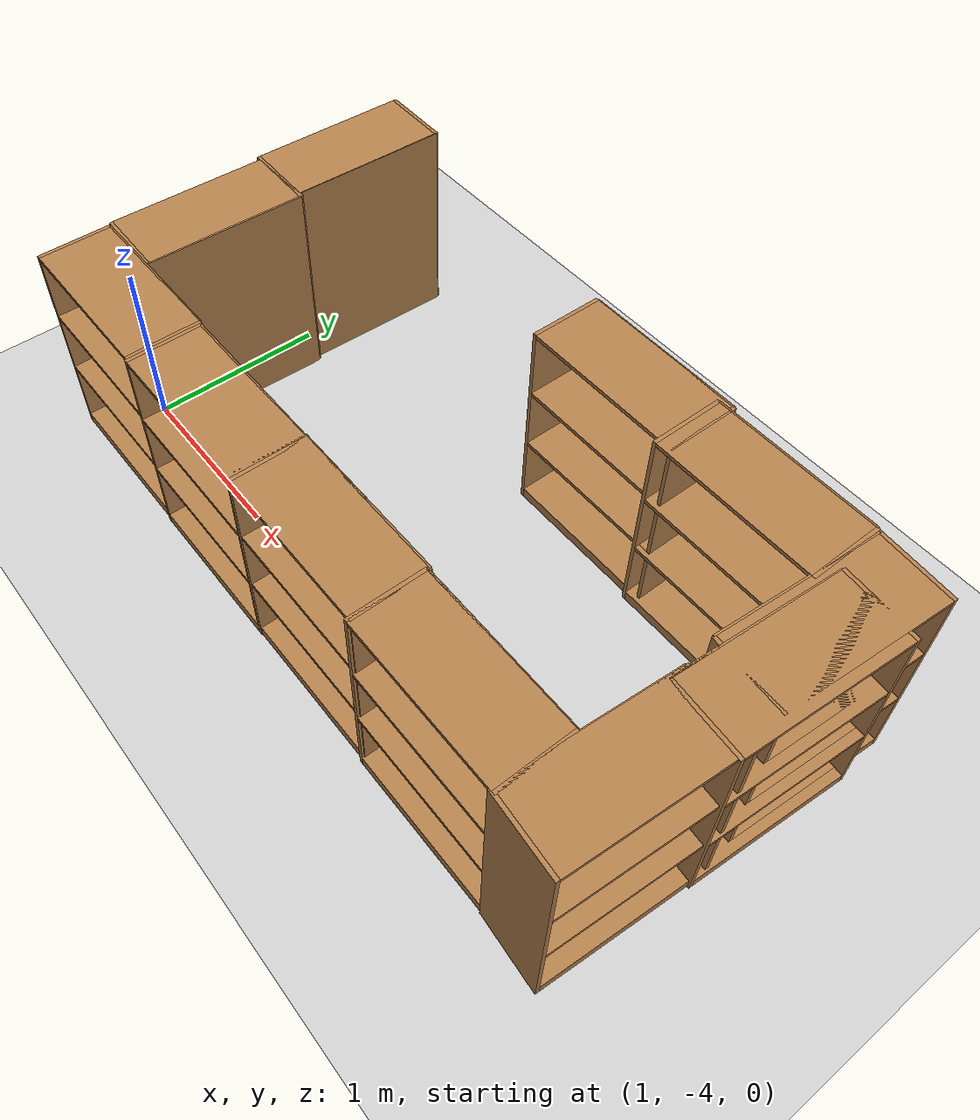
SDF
<sdf version="1.6">
 <world name="default">
  <model name="ground_plane">
   <static>1</static>
   <link name="link">
    <collision name="collision">
     <geometry><plane><normal>0 0 1</normal><size>100 100</size></plane></geometry>
     <surface>
      <contact><collide_bitmask>65535</collide_bitmask></contact>
      <friction><ode><mu>100</mu><mu2>50</mu2></ode></friction>
     </surface>
    </collision>
    <visual name="visual">
     <cast_shadows>0</cast_shadows>
     <geometry><plane><normal>0 0 1</normal><size>100 100</size></plane></geometry>
     <material>
      <script><uri>file://media/materials/scripts/gazebo.material</uri><name>Gazebo/Grey</name></script>
     </material>
    </visual>
   </link>
  </model>
  <model name="bookshelf_clone_1_clone_0_clone_clone_clone">
   <static>1</static>
   <link name="link">
    <inertial><mass>1</mass></inertial>
    <collision name="back">
     <pose>0 0.005 0.6 0 -0 0</pose>
     <geometry><box><size>0.9 0.01 1.2</size></box></geometry>
    </collision>
    <visual name="visual1">
     <pose>0 0.005 0.6 0 -0 0</pose>
     <geometry><box><size>0.9 0.01 1.2</size></box></geometry>
     <material>
      <script><uri>file://media/materials/scripts/gazebo.material</uri><name>Gazebo/Wood</name></script>
     </material>
    </visual>
    <collision name="left_side">
     <pose>0.45 -0.195 0.6 0 -0 0</pose>
     <geometry><box><size>0.02 0.4 1.2</size></box></geometry>
    </collision>
    <visual name="visual2">
     <pose>0.45 -0.195 0.6 0 -0 0</pose>
     <geometry><box><size>0.02 0.4 1.2</size></box></geometry>
     <material>
      <script><uri>file://media/materials/scripts/gazebo.material</uri><name>Gazebo/Wood</name></script>
     </material>
    </visual>
    <collision name="right_side">
     <pose>-0.45 -0.195 0.6 0 -0 0</pose>
     <geometry><box><size>0.02 0.4 1.2</size></box></geometry>
    </collision>
    <visual name="visual3">
     <pose>-0.45 -0.195 0.6 0 -0 0</pose>
     <geometry><box><size>0.02 0.4 1.2</size></box></geometry>
     <material>
      <script><uri>file://media/materials/scripts/gazebo.material</uri><name>Gazebo/Wood</name></script>
     </material>
    </visual>
    <collision name="bottom">
     <pose>0 -0.195 0.03 0 -0 0</pose>
     <geometry><box><size>0.88 0.4 0.06</size></box></geometry>
    </collision>
    <visual name="visual4">
     <pose>0 -0.195 0.03 0 -0 0</pose>
     <geometry><box><size>0.88 0.4 0.06</size></box></geometry>
     <material>
      <script><uri>file://media/materials/scripts/gazebo.material</uri><name>Gazebo/Wood</name></script>
     </material>
    </visual>
    <collision name="top">
     <pose>0 -0.195 1.19 0 -0 0</pose>
     <geometry><box><size>0.88 0.4 0.02</size></box></geometry>
    </collision>
    <visual name="visual5">
     <pose>0 -0.195 1.19 0 -0 0</pose>
     <geometry><box><size>0.88 0.4 0.02</size></box></geometry>
     <material>
      <script><uri>file://media/materials/scripts/gazebo.material</uri><name>Gazebo/Wood</name></script>
     </material>
    </visual>
    <collision name="low_shelf">
     <pose>0 -0.195 0.43 0 -0 0</pose>
     <geometry><box><size>0.88 0.4 0.02</size></box></geometry>
    </collision>
    <visual name="visual6">
     <pose>0 -0.195 0.43 0 -0 0</pose>
     <geometry><box><size>0.88 0.4 0.02</size></box></geometry>
     <material>
      <script><uri>file://media/materials/scripts/gazebo.material</uri><name>Gazebo/Wood</name></script>
     </material>
    </visual>
    <collision name="high_shelf">
     <pose>0 -0.195 0.8 0 -0 0</pose>
     <geometry><box><size>0.88 0.4 0.02</size></box></geometry>
    </collision>
    <visual name="visual7">
     <pose>0 -0.195 0.8 0 -0 0</pose>
     <geometry><box><size>0.88 0.4 0.02</size></box></geometry>
     <material>
      <script><uri>file://media/materials/scripts/gazebo.material</uri><name>Gazebo/Wood</name></script>
     </material>
    </visual>
   </link>
   <pose>1.18486 -2.61264 0 0 0 -1.59248</pose>
  </model>
  <model name="bookshelf_clone_1_clone_0_clone_clone_clone_0">
   <static>1</static>
   <link name="link">
    <inertial><mass>1</mass></inertial>
    <collision name="back">
     <pose>0 0.005 0.6 0 -0 0</pose>
     <geometry><box><size>0.9 0.01 1.2</size></box></geometry>
    </collision>
    <visual name="visual1">
     <pose>0 0.005 0.6 0 -0 0</pose>
     <geometry><box><size>0.9 0.01 1.2</size></box></geometry>
     <material>
      <script><uri>file://media/materials/scripts/gazebo.material</uri><name>Gazebo/Wood</name></script>
     </material>
    </visual>
    <collision name="left_side">
     <pose>0.45 -0.195 0.6 0 -0 0</pose>
     <geometry><box><size>0.02 0.4 1.2</size></box></geometry>
    </collision>
    <visual name="visual2">
     <pose>0.45 -0.195 0.6 0 -0 0</pose>
     <geometry><box><size>0.02 0.4 1.2</size></box></geometry>
     <material>
      <script><uri>file://media/materials/scripts/gazebo.material</uri><name>Gazebo/Wood</name></script>
     </material>
    </visual>
    <collision name="right_side">
     <pose>-0.45 -0.195 0.6 0 -0 0</pose>
     <geometry><box><size>0.02 0.4 1.2</size></box></geometry>
    </collision>
    <visual name="visual3">
     <pose>-0.45 -0.195 0.6 0 -0 0</pose>
     <geometry><box><size>0.02 0.4 1.2</size></box></geometry>
     <material>
      <script><uri>file://media/materials/scripts/gazebo.material</uri><name>Gazebo/Wood</name></script>
     </material>
    </visual>
    <collision name="bottom">
     <pose>0 -0.195 0.03 0 -0 0</pose>
     <geometry><box><size>0.88 0.4 0.06</size></box></geometry>
    </collision>
    <visual name="visual4">
     <pose>0 -0.195 0.03 0 -0 0</pose>
     <geometry><box><size>0.88 0.4 0.06</size></box></geometry>
     <material>
      <script><uri>file://media/materials/scripts/gazebo.material</uri><name>Gazebo/Wood</name></script>
     </material>
    </visual>
    <collision name="top">
     <pose>0 -0.195 1.19 0 -0 0</pose>
     <geometry><box><size>0.88 0.4 0.02</size></box></geometry>
    </collision>
    <visual name="visual5">
     <pose>0 -0.195 1.19 0 -0 0</pose>
     <geometry><box><size>0.88 0.4 0.02</size></box></geometry>
     <material>
      <script><uri>file://media/materials/scripts/gazebo.material</uri><name>Gazebo/Wood</name></script>
     </material>
    </visual>
    <collision name="low_shelf">
     <pose>0 -0.195 0.43 0 -0 0</pose>
     <geometry><box><size>0.88 0.4 0.02</size></box></geometry>
    </collision>
    <visual name="visual6">
     <pose>0 -0.195 0.43 0 -0 0</pose>
     <geometry><box><size>0.88 0.4 0.02</size></box></geometry>
     <material>
      <script><uri>file://media/materials/scripts/gazebo.material</uri><name>Gazebo/Wood</name></script>
     </material>
    </visual>
    <collision name="high_shelf">
     <pose>0 -0.195 0.8 0 -0 0</pose>
     <geometry><box><size>0.88 0.4 0.02</size></box></geometry>
    </collision>
    <visual name="visual7">
     <pose>0 -0.195 0.8 0 -0 0</pose>
     <geometry><box><size>0.88 0.4 0.02</size></box></geometry>
     <material>
      <script><uri>file://media/materials/scripts/gazebo.material</uri><name>Gazebo/Wood</name></script>
     </material>
    </visual>
   </link>
   <pose>1.1935 -3.51086 0 0 0 -1.59248</pose>
  </model>
  <model name="bookshelf_clone_3">
   <static>1</static>
   <link name="link">
    <inertial><mass>1</mass></inertial>
    <collision name="back">
     <pose>0 0.005 0.6 0 -0 0</pose>
     <geometry><box><size>0.9 0.01 1.2</size></box></geometry>
    </collision>
    <visual name="visual1">
     <pose>0 0.005 0.6 0 -0 0</pose>
     <geometry><box><size>0.9 0.01 1.2</size></box></geometry>
     <material>
      <script><uri>file://media/materials/scripts/gazebo.material</uri><name>Gazebo/Wood</name></script>
     </material>
    </visual>
    <collision name="left_side">
     <pose>0.45 -0.195 0.6 0 -0 0</pose>
     <geometry><box><size>0.02 0.4 1.2</size></box></geometry>
    </collision>
    <visual name="visual2">
     <pose>0.45 -0.195 0.6 0 -0 0</pose>
     <geometry><box><size>0.02 0.4 1.2</size></box></geometry>
     <material>
      <script><uri>file://media/materials/scripts/gazebo.material</uri><name>Gazebo/Wood</name></script>
     </material>
    </visual>
    <collision name="right_side">
     <pose>-0.45 -0.195 0.6 0 -0 0</pose>
     <geometry><box><size>0.02 0.4 1.2</size></box></geometry>
    </collision>
    <visual name="visual3">
     <pose>-0.45 -0.195 0.6 0 -0 0</pose>
     <geometry><box><size>0.02 0.4 1.2</size></box></geometry>
     <material>
      <script><uri>file://media/materials/scripts/gazebo.material</uri><name>Gazebo/Wood</name></script>
     </material>
    </visual>
    <collision name="bottom">
     <pose>0 -0.195 0.03 0 -0 0</pose>
     <geometry><box><size>0.88 0.4 0.06</size></box></geometry>
    </collision>
    <visual name="visual4">
     <pose>0 -0.195 0.03 0 -0 0</pose>
     <geometry><box><size>0.88 0.4 0.06</size></box></geometry>
     <material>
      <script><uri>file://media/materials/scripts/gazebo.material</uri><name>Gazebo/Wood</name></script>
     </material>
    </visual>
    <collision name="top">
     <pose>0 -0.195 1.19 0 -0 0</pose>
     <geometry><box><size>0.88 0.4 0.02</size></box></geometry>
    </collision>
    <visual name="visual5">
     <pose>0 -0.195 1.19 0 -0 0</pose>
     <geometry><box><size>0.88 0.4 0.02</size></box></geometry>
     <material>
      <script><uri>file://media/materials/scripts/gazebo.material</uri><name>Gazebo/Wood</name></script>
     </material>
    </visual>
    <collision name="low_shelf">
     <pose>0 -0.195 0.43 0 -0 0</pose>
     <geometry><box><size>0.88 0.4 0.02</size></box></geometry>
    </collision>
    <visual name="visual6">
     <pose>0 -0.195 0.43 0 -0 0</pose>
     <geometry><box><size>0.88 0.4 0.02</size></box></geometry>
     <material>
      <script><uri>file://media/materials/scripts/gazebo.material</uri><name>Gazebo/Wood</name></script>
     </material>
    </visual>
    <collision name="high_shelf">
     <pose>0 -0.195 0.8 0 -0 0</pose>
     <geometry><box><size>0.88 0.4 0.02</size></box></geometry>
    </collision>
    <visual name="visual7">
     <pose>0 -0.195 0.8 0 -0 0</pose>
     <geometry><box><size>0.88 0.4 0.02</size></box></geometry>
     <material>
      <script><uri>file://media/materials/scripts/gazebo.material</uri><name>Gazebo/Wood</name></script>
     </material>
    </visual>
   </link>
   <pose>1.26252 -3.97265 0 0 -0 0</pose>
  </model>
  <model name="bookshelf_clone_4">
   <static>1</static>
   <link name="link">
    <inertial><mass>1</mass></inertial>
    <collision name="back">
     <pose>0 0.005 0.6 0 -0 0</pose>
     <geometry><box><size>0.9 0.01 1.2</size></box></geometry>
    </collision>
    <visual name="visual1">
     <pose>0 0.005 0.6 0 -0 0</pose>
     <geometry><box><size>0.9 0.01 1.2</size></box></geometry>
     <material>
      <script><uri>file://media/materials/scripts/gazebo.material</uri><name>Gazebo/Wood</name></script>
     </material>
    </visual>
    <collision name="left_side">
     <pose>0.45 -0.195 0.6 0 -0 0</pose>
     <geometry><box><size>0.02 0.4 1.2</size></box></geometry>
    </collision>
    <visual name="visual2">
     <pose>0.45 -0.195 0.6 0 -0 0</pose>
     <geometry><box><size>0.02 0.4 1.2</size></box></geometry>
     <material>
      <script><uri>file://media/materials/scripts/gazebo.material</uri><name>Gazebo/Wood</name></script>
     </material>
    </visual>
    <collision name="right_side">
     <pose>-0.45 -0.195 0.6 0 -0 0</pose>
     <geometry><box><size>0.02 0.4 1.2</size></box></geometry>
    </collision>
    <visual name="visual3">
     <pose>-0.45 -0.195 0.6 0 -0 0</pose>
     <geometry><box><size>0.02 0.4 1.2</size></box></geometry>
     <material>
      <script><uri>file://media/materials/scripts/gazebo.material</uri><name>Gazebo/Wood</name></script>
     </material>
    </visual>
    <collision name="bottom">
     <pose>0 -0.195 0.03 0 -0 0</pose>
     <geometry><box><size>0.88 0.4 0.06</size></box></geometry>
    </collision>
    <visual name="visual4">
     <pose>0 -0.195 0.03 0 -0 0</pose>
     <geometry><box><size>0.88 0.4 0.06</size></box></geometry>
     <material>
      <script><uri>file://media/materials/scripts/gazebo.material</uri><name>Gazebo/Wood</name></script>
     </material>
    </visual>
    <collision name="top">
     <pose>0 -0.195 1.19 0 -0 0</pose>
     <geometry><box><size>0.88 0.4 0.02</size></box></geometry>
    </collision>
    <visual name="visual5">
     <pose>0 -0.195 1.19 0 -0 0</pose>
     <geometry><box><size>0.88 0.4 0.02</size></box></geometry>
     <material>
      <script><uri>file://media/materials/scripts/gazebo.material</uri><name>Gazebo/Wood</name></script>
     </material>
    </visual>
    <collision name="low_shelf">
     <pose>0 -0.195 0.43 0 -0 0</pose>
     <geometry><box><size>0.88 0.4 0.02</size></box></geometry>
    </collision>
    <visual name="visual6">
     <pose>0 -0.195 0.43 0 -0 0</pose>
     <geometry><box><size>0.88 0.4 0.02</size></box></geometry>
     <material>
      <script><uri>file://media/materials/scripts/gazebo.material</uri><name>Gazebo/Wood</name></script>
     </material>
    </visual>
    <collision name="high_shelf">
     <pose>0 -0.195 0.8 0 -0 0</pose>
     <geometry><box><size>0.88 0.4 0.02</size></box></geometry>
    </collision>
    <visual name="visual7">
     <pose>0 -0.195 0.8 0 -0 0</pose>
     <geometry><box><size>0.88 0.4 0.02</size></box></geometry>
     <material>
      <script><uri>file://media/materials/scripts/gazebo.material</uri><name>Gazebo/Wood</name></script>
     </material>
    </visual>
   </link>
   <pose>2.18043 -3.98119 0 0 -0 0</pose>
  </model>
  <model name="bookshelf_clone_5">
   <static>1</static>
   <link name="link">
    <inertial><mass>1</mass></inertial>
    <collision name="back">
     <pose>0 0.005 0.6 0 -0 0</pose>
     <geometry><box><size>0.9 0.01 1.2</size></box></geometry>
    </collision>
    <visual name="visual1">
     <pose>0 0.005 0.6 0 -0 0</pose>
     <geometry><box><size>0.9 0.01 1.2</size></box></geometry>
     <material>
      <script><uri>file://media/materials/scripts/gazebo.material</uri><name>Gazebo/Wood</name></script>
     </material>
    </visual>
    <collision name="left_side">
     <pose>0.45 -0.195 0.6 0 -0 0</pose>
     <geometry><box><size>0.02 0.4 1.2</size></box></geometry>
    </collision>
    <visual name="visual2">
     <pose>0.45 -0.195 0.6 0 -0 0</pose>
     <geometry><box><size>0.02 0.4 1.2</size></box></geometry>
     <material>
      <script><uri>file://media/materials/scripts/gazebo.material</uri><name>Gazebo/Wood</name></script>
     </material>
    </visual>
    <collision name="right_side">
     <pose>-0.45 -0.195 0.6 0 -0 0</pose>
     <geometry><box><size>0.02 0.4 1.2</size></box></geometry>
    </collision>
    <visual name="visual3">
     <pose>-0.45 -0.195 0.6 0 -0 0</pose>
     <geometry><box><size>0.02 0.4 1.2</size></box></geometry>
     <material>
      <script><uri>file://media/materials/scripts/gazebo.material</uri><name>Gazebo/Wood</name></script>
     </material>
    </visual>
    <collision name="bottom">
     <pose>0 -0.195 0.03 0 -0 0</pose>
     <geometry><box><size>0.88 0.4 0.06</size></box></geometry>
    </collision>
    <visual name="visual4">
     <pose>0 -0.195 0.03 0 -0 0</pose>
     <geometry><box><size>0.88 0.4 0.06</size></box></geometry>
     <material>
      <script><uri>file://media/materials/scripts/gazebo.material</uri><name>Gazebo/Wood</name></script>
     </material>
    </visual>
    <collision name="top">
     <pose>0 -0.195 1.19 0 -0 0</pose>
     <geometry><box><size>0.88 0.4 0.02</size></box></geometry>
    </collision>
    <visual name="visual5">
     <pose>0 -0.195 1.19 0 -0 0</pose>
     <geometry><box><size>0.88 0.4 0.02</size></box></geometry>
     <material>
      <script><uri>file://media/materials/scripts/gazebo.material</uri><name>Gazebo/Wood</name></script>
     </material>
    </visual>
    <collision name="low_shelf">
     <pose>0 -0.195 0.43 0 -0 0</pose>
     <geometry><box><size>0.88 0.4 0.02</size></box></geometry>
    </collision>
    <visual name="visual6">
     <pose>0 -0.195 0.43 0 -0 0</pose>
     <geometry><box><size>0.88 0.4 0.02</size></box></geometry>
     <material>
      <script><uri>file://media/materials/scripts/gazebo.material</uri><name>Gazebo/Wood</name></script>
     </material>
    </visual>
    <collision name="high_shelf">
     <pose>0 -0.195 0.8 0 -0 0</pose>
     <geometry><box><size>0.88 0.4 0.02</size></box></geometry>
    </collision>
    <visual name="visual7">
     <pose>0 -0.195 0.8 0 -0 0</pose>
     <geometry><box><size>0.88 0.4 0.02</size></box></geometry>
     <material>
      <script><uri>file://media/materials/scripts/gazebo.material</uri><name>Gazebo/Wood</name></script>
     </material>
    </visual>
   </link>
   <pose>3.06264 -3.97725 0 0 -0 0</pose>
  </model>
  <model name="bookshelf_clone_6">
   <static>1</static>
   <link name="link">
    <inertial><mass>1</mass></inertial>
    <collision name="back">
     <pose>0 0.005 0.6 0 -0 0</pose>
     <geometry><box><size>0.9 0.01 1.2</size></box></geometry>
    </collision>
    <visual name="visual1">
     <pose>0 0.005 0.6 0 -0 0</pose>
     <geometry><box><size>0.9 0.01 1.2</size></box></geometry>
     <material>
      <script><uri>file://media/materials/scripts/gazebo.material</uri><name>Gazebo/Wood</name></script>
     </material>
    </visual>
    <collision name="left_side">
     <pose>0.45 -0.195 0.6 0 -0 0</pose>
     <geometry><box><size>0.02 0.4 1.2</size></box></geometry>
    </collision>
    <visual name="visual2">
     <pose>0.45 -0.195 0.6 0 -0 0</pose>
     <geometry><box><size>0.02 0.4 1.2</size></box></geometry>
     <material>
      <script><uri>file://media/materials/scripts/gazebo.material</uri><name>Gazebo/Wood</name></script>
     </material>
    </visual>
    <collision name="right_side">
     <pose>-0.45 -0.195 0.6 0 -0 0</pose>
     <geometry><box><size>0.02 0.4 1.2</size></box></geometry>
    </collision>
    <visual name="visual3">
     <pose>-0.45 -0.195 0.6 0 -0 0</pose>
     <geometry><box><size>0.02 0.4 1.2</size></box></geometry>
     <material>
      <script><uri>file://media/materials/scripts/gazebo.material</uri><name>Gazebo/Wood</name></script>
     </material>
    </visual>
    <collision name="bottom">
     <pose>0 -0.195 0.03 0 -0 0</pose>
     <geometry><box><size>0.88 0.4 0.06</size></box></geometry>
    </collision>
    <visual name="visual4">
     <pose>0 -0.195 0.03 0 -0 0</pose>
     <geometry><box><size>0.88 0.4 0.06</size></box></geometry>
     <material>
      <script><uri>file://media/materials/scripts/gazebo.material</uri><name>Gazebo/Wood</name></script>
     </material>
    </visual>
    <collision name="top">
     <pose>0 -0.195 1.19 0 -0 0</pose>
     <geometry><box><size>0.88 0.4 0.02</size></box></geometry>
    </collision>
    <visual name="visual5">
     <pose>0 -0.195 1.19 0 -0 0</pose>
     <geometry><box><size>0.88 0.4 0.02</size></box></geometry>
     <material>
      <script><uri>file://media/materials/scripts/gazebo.material</uri><name>Gazebo/Wood</name></script>
     </material>
    </visual>
    <collision name="low_shelf">
     <pose>0 -0.195 0.43 0 -0 0</pose>
     <geometry><box><size>0.88 0.4 0.02</size></box></geometry>
    </collision>
    <visual name="visual6">
     <pose>0 -0.195 0.43 0 -0 0</pose>
     <geometry><box><size>0.88 0.4 0.02</size></box></geometry>
     <material>
      <script><uri>file://media/materials/scripts/gazebo.material</uri><name>Gazebo/Wood</name></script>
     </material>
    </visual>
    <collision name="high_shelf">
     <pose>0 -0.195 0.8 0 -0 0</pose>
     <geometry><box><size>0.88 0.4 0.02</size></box></geometry>
    </collision>
    <visual name="visual7">
     <pose>0 -0.195 0.8 0 -0 0</pose>
     <geometry><box><size>0.88 0.4 0.02</size></box></geometry>
     <material>
      <script><uri>file://media/materials/scripts/gazebo.material</uri><name>Gazebo/Wood</name></script>
     </material>
    </visual>
   </link>
   <pose>3.9572 -3.99098 0 0 -0 0</pose>
  </model>
  <model name="bookshelf_clone_2_clone">
   <static>1</static>
   <link name="link">
    <inertial><mass>1</mass></inertial>
    <collision name="back">
     <pose>0 0.005 0.6 0 -0 0</pose>
     <geometry><box><size>0.9 0.01 1.2</size></box></geometry>
    </collision>
    <visual name="visual1">
     <pose>0 0.005 0.6 0 -0 0</pose>
     <geometry><box><size>0.9 0.01 1.2</size></box></geometry>
     <material>
      <script><uri>file://media/materials/scripts/gazebo.material</uri><name>Gazebo/Wood</name></script>
     </material>
    </visual>
    <collision name="left_side">
     <pose>0.45 -0.195 0.6 0 -0 0</pose>
     <geometry><box><size>0.02 0.4 1.2</size></box></geometry>
    </collision>
    <visual name="visual2">
     <pose>0.45 -0.195 0.6 0 -0 0</pose>
     <geometry><box><size>0.02 0.4 1.2</size></box></geometry>
     <material>
      <script><uri>file://media/materials/scripts/gazebo.material</uri><name>Gazebo/Wood</name></script>
     </material>
    </visual>
    <collision name="right_side">
     <pose>-0.45 -0.195 0.6 0 -0 0</pose>
     <geometry><box><size>0.02 0.4 1.2</size></box></geometry>
    </collision>
    <visual name="visual3">
     <pose>-0.45 -0.195 0.6 0 -0 0</pose>
     <geometry><box><size>0.02 0.4 1.2</size></box></geometry>
     <material>
      <script><uri>file://media/materials/scripts/gazebo.material</uri><name>Gazebo/Wood</name></script>
     </material>
    </visual>
    <collision name="bottom">
     <pose>0 -0.195 0.03 0 -0 0</pose>
     <geometry><box><size>0.88 0.4 0.06</size></box></geometry>
    </collision>
    <visual name="visual4">
     <pose>0 -0.195 0.03 0 -0 0</pose>
     <geometry><box><size>0.88 0.4 0.06</size></box></geometry>
     <material>
      <script><uri>file://media/materials/scripts/gazebo.material</uri><name>Gazebo/Wood</name></script>
     </material>
    </visual>
    <collision name="top">
     <pose>0 -0.195 1.19 0 -0 0</pose>
     <geometry><box><size>0.88 0.4 0.02</size></box></geometry>
    </collision>
    <visual name="visual5">
     <pose>0 -0.195 1.19 0 -0 0</pose>
     <geometry><box><size>0.88 0.4 0.02</size></box></geometry>
     <material>
      <script><uri>file://media/materials/scripts/gazebo.material</uri><name>Gazebo/Wood</name></script>
     </material>
    </visual>
    <collision name="low_shelf">
     <pose>0 -0.195 0.43 0 -0 0</pose>
     <geometry><box><size>0.88 0.4 0.02</size></box></geometry>
    </collision>
    <visual name="visual6">
     <pose>0 -0.195 0.43 0 -0 0</pose>
     <geometry><box><size>0.88 0.4 0.02</size></box></geometry>
     <material>
      <script><uri>file://media/materials/scripts/gazebo.material</uri><name>Gazebo/Wood</name></script>
     </material>
    </visual>
    <collision name="high_shelf">
     <pose>0 -0.195 0.8 0 -0 0</pose>
     <geometry><box><size>0.88 0.4 0.02</size></box></geometry>
    </collision>
    <visual name="visual7">
     <pose>0 -0.195 0.8 0 -0 0</pose>
     <geometry><box><size>0.88 0.4 0.02</size></box></geometry>
     <material>
      <script><uri>file://media/materials/scripts/gazebo.material</uri><name>Gazebo/Wood</name></script>
     </material>
    </visual>
   </link>
   <pose>3.20227 -2.38112 0 0 -0 0</pose>
  </model>
  <model name="bookshelf_clone_2_clone_0">
   <static>1</static>
   <link name="link">
    <inertial><mass>1</mass></inertial>
    <collision name="back">
     <pose>0 0.005 0.6 0 -0 0</pose>
     <geometry><box><size>0.9 0.01 1.2</size></box></geometry>
    </collision>
    <visual name="visual1">
     <pose>0 0.005 0.6 0 -0 0</pose>
     <geometry><box><size>0.9 0.01 1.2</size></box></geometry>
     <material>
      <script><uri>file://media/materials/scripts/gazebo.material</uri><name>Gazebo/Wood</name></script>
     </material>
    </visual>
    <collision name="left_side">
     <pose>0.45 -0.195 0.6 0 -0 0</pose>
     <geometry><box><size>0.02 0.4 1.2</size></box></geometry>
    </collision>
    <visual name="visual2">
     <pose>0.45 -0.195 0.6 0 -0 0</pose>
     <geometry><box><size>0.02 0.4 1.2</size></box></geometry>
     <material>
      <script><uri>file://media/materials/scripts/gazebo.material</uri><name>Gazebo/Wood</name></script>
     </material>
    </visual>
    <collision name="right_side">
     <pose>-0.45 -0.195 0.6 0 -0 0</pose>
     <geometry><box><size>0.02 0.4 1.2</size></box></geometry>
    </collision>
    <visual name="visual3">
     <pose>-0.45 -0.195 0.6 0 -0 0</pose>
     <geometry><box><size>0.02 0.4 1.2</size></box></geometry>
     <material>
      <script><uri>file://media/materials/scripts/gazebo.material</uri><name>Gazebo/Wood</name></script>
     </material>
    </visual>
    <collision name="bottom">
     <pose>0 -0.195 0.03 0 -0 0</pose>
     <geometry><box><size>0.88 0.4 0.06</size></box></geometry>
    </collision>
    <visual name="visual4">
     <pose>0 -0.195 0.03 0 -0 0</pose>
     <geometry><box><size>0.88 0.4 0.06</size></box></geometry>
     <material>
      <script><uri>file://media/materials/scripts/gazebo.material</uri><name>Gazebo/Wood</name></script>
     </material>
    </visual>
    <collision name="top">
     <pose>0 -0.195 1.19 0 -0 0</pose>
     <geometry><box><size>0.88 0.4 0.02</size></box></geometry>
    </collision>
    <visual name="visual5">
     <pose>0 -0.195 1.19 0 -0 0</pose>
     <geometry><box><size>0.88 0.4 0.02</size></box></geometry>
     <material>
      <script><uri>file://media/materials/scripts/gazebo.material</uri><name>Gazebo/Wood</name></script>
     </material>
    </visual>
    <collision name="low_shelf">
     <pose>0 -0.195 0.43 0 -0 0</pose>
     <geometry><box><size>0.88 0.4 0.02</size></box></geometry>
    </collision>
    <visual name="visual6">
     <pose>0 -0.195 0.43 0 -0 0</pose>
     <geometry><box><size>0.88 0.4 0.02</size></box></geometry>
     <material>
      <script><uri>file://media/materials/scripts/gazebo.material</uri><name>Gazebo/Wood</name></script>
     </material>
    </visual>
    <collision name="high_shelf">
     <pose>0 -0.195 0.8 0 -0 0</pose>
     <geometry><box><size>0.88 0.4 0.02</size></box></geometry>
    </collision>
    <visual name="visual7">
     <pose>0 -0.195 0.8 0 -0 0</pose>
     <geometry><box><size>0.88 0.4 0.02</size></box></geometry>
     <material>
      <script><uri>file://media/materials/scripts/gazebo.material</uri><name>Gazebo/Wood</name></script>
     </material>
    </visual>
   </link>
   <pose>4.03147 -2.40856 0 0 -0 0</pose>
  </model>
  <model name="bookshelf_clone_0_clone_clone_1_clone_4_clone_clone">
   <static>1</static>
   <link name="link">
    <inertial><mass>1</mass></inertial>
    <collision name="back">
     <pose>0 0.005 0.6 0 -0 0</pose>
     <geometry><box><size>0.9 0.01 1.2</size></box></geometry>
    </collision>
    <visual name="visual1">
     <pose>0 0.005 0.6 0 -0 0</pose>
     <geometry><box><size>0.9 0.01 1.2</size></box></geometry>
     <material>
      <script><uri>file://media/materials/scripts/gazebo.material</uri><name>Gazebo/Wood</name></script>
     </material>
    </visual>
    <collision name="left_side">
     <pose>0.45 -0.195 0.6 0 -0 0</pose>
     <geometry><box><size>0.02 0.4 1.2</size></box></geometry>
    </collision>
    <visual name="visual2">
     <pose>0.45 -0.195 0.6 0 -0 0</pose>
     <geometry><box><size>0.02 0.4 1.2</size></box></geometry>
     <material>
      <script><uri>file://media/materials/scripts/gazebo.material</uri><name>Gazebo/Wood</name></script>
     </material>
    </visual>
    <collision name="right_side">
     <pose>-0.45 -0.195 0.6 0 -0 0</pose>
     <geometry><box><size>0.02 0.4 1.2</size></box></geometry>
    </collision>
    <visual name="visual3">
     <pose>-0.45 -0.195 0.6 0 -0 0</pose>
     <geometry><box><size>0.02 0.4 1.2</size></box></geometry>
     <material>
      <script><uri>file://media/materials/scripts/gazebo.material</uri><name>Gazebo/Wood</name></script>
     </material>
    </visual>
    <collision name="bottom">
     <pose>0 -0.195 0.03 0 -0 0</pose>
     <geometry><box><size>0.88 0.4 0.06</size></box></geometry>
    </collision>
    <visual name="visual4">
     <pose>0 -0.195 0.03 0 -0 0</pose>
     <geometry><box><size>0.88 0.4 0.06</size></box></geometry>
     <material>
      <script><uri>file://media/materials/scripts/gazebo.material</uri><name>Gazebo/Wood</name></script>
     </material>
    </visual>
    <collision name="top">
     <pose>0 -0.195 1.19 0 -0 0</pose>
     <geometry><box><size>0.88 0.4 0.02</size></box></geometry>
    </collision>
    <visual name="visual5">
     <pose>0 -0.195 1.19 0 -0 0</pose>
     <geometry><box><size>0.88 0.4 0.02</size></box></geometry>
     <material>
      <script><uri>file://media/materials/scripts/gazebo.material</uri><name>Gazebo/Wood</name></script>
     </material>
    </visual>
    <collision name="low_shelf">
     <pose>0 -0.195 0.43 0 -0 0</pose>
     <geometry><box><size>0.88 0.4 0.02</size></box></geometry>
    </collision>
    <visual name="visual6">
     <pose>0 -0.195 0.43 0 -0 0</pose>
     <geometry><box><size>0.88 0.4 0.02</size></box></geometry>
     <material>
      <script><uri>file://media/materials/scripts/gazebo.material</uri><name>Gazebo/Wood</name></script>
     </material>
    </visual>
    <collision name="high_shelf">
     <pose>0 -0.195 0.8 0 -0 0</pose>
     <geometry><box><size>0.88 0.4 0.02</size></box></geometry>
    </collision>
    <visual name="visual7">
     <pose>0 -0.195 0.8 0 -0 0</pose>
     <geometry><box><size>0.88 0.4 0.02</size></box></geometry>
     <material>
      <script><uri>file://media/materials/scripts/gazebo.material</uri><name>Gazebo/Wood</name></script>
     </material>
    </visual>
   </link>
   <pose>4.42222 -3.93412 0 0 -0 1.49339</pose>
  </model>
  <model name="bookshelf_clone_0_clone_clone_1_clone_4_clone_clone_0">
   <static>1</static>
   <link name="link">
    <inertial><mass>1</mass></inertial>
    <collision name="back">
     <pose>0 0.005 0.6 0 -0 0</pose>
     <geometry><box><size>0.9 0.01 1.2</size></box></geometry>
    </collision>
    <visual name="visual1">
     <pose>0 0.005 0.6 0 -0 0</pose>
     <geometry><box><size>0.9 0.01 1.2</size></box></geometry>
     <material>
      <script><uri>file://media/materials/scripts/gazebo.material</uri><name>Gazebo/Wood</name></script>
     </material>
    </visual>
    <collision name="left_side">
     <pose>0.45 -0.195 0.6 0 -0 0</pose>
     <geometry><box><size>0.02 0.4 1.2</size></box></geometry>
    </collision>
    <visual name="visual2">
     <pose>0.45 -0.195 0.6 0 -0 0</pose>
     <geometry><box><size>0.02 0.4 1.2</size></box></geometry>
     <material>
      <script><uri>file://media/materials/scripts/gazebo.material</uri><name>Gazebo/Wood</name></script>
     </material>
    </visual>
    <collision name="right_side">
     <pose>-0.45 -0.195 0.6 0 -0 0</pose>
     <geometry><box><size>0.02 0.4 1.2</size></box></geometry>
    </collision>
    <visual name="visual3">
     <pose>-0.45 -0.195 0.6 0 -0 0</pose>
     <geometry><box><size>0.02 0.4 1.2</size></box></geometry>
     <material>
      <script><uri>file://media/materials/scripts/gazebo.material</uri><name>Gazebo/Wood</name></script>
     </material>
    </visual>
    <collision name="bottom">
     <pose>0 -0.195 0.03 0 -0 0</pose>
     <geometry><box><size>0.88 0.4 0.06</size></box></geometry>
    </collision>
    <visual name="visual4">
     <pose>0 -0.195 0.03 0 -0 0</pose>
     <geometry><box><size>0.88 0.4 0.06</size></box></geometry>
     <material>
      <script><uri>file://media/materials/scripts/gazebo.material</uri><name>Gazebo/Wood</name></script>
     </material>
    </visual>
    <collision name="top">
     <pose>0 -0.195 1.19 0 -0 0</pose>
     <geometry><box><size>0.88 0.4 0.02</size></box></geometry>
    </collision>
    <visual name="visual5">
     <pose>0 -0.195 1.19 0 -0 0</pose>
     <geometry><box><size>0.88 0.4 0.02</size></box></geometry>
     <material>
      <script><uri>file://media/materials/scripts/gazebo.material</uri><name>Gazebo/Wood</name></script>
     </material>
    </visual>
    <collision name="low_shelf">
     <pose>0 -0.195 0.43 0 -0 0</pose>
     <geometry><box><size>0.88 0.4 0.02</size></box></geometry>
    </collision>
    <visual name="visual6">
     <pose>0 -0.195 0.43 0 -0 0</pose>
     <geometry><box><size>0.88 0.4 0.02</size></box></geometry>
     <material>
      <script><uri>file://media/materials/scripts/gazebo.material</uri><name>Gazebo/Wood</name></script>
     </material>
    </visual>
    <collision name="high_shelf">
     <pose>0 -0.195 0.8 0 -0 0</pose>
     <geometry><box><size>0.88 0.4 0.02</size></box></geometry>
    </collision>
    <visual name="visual7">
     <pose>0 -0.195 0.8 0 -0 0</pose>
     <geometry><box><size>0.88 0.4 0.02</size></box></geometry>
     <material>
      <script><uri>file://media/materials/scripts/gazebo.material</uri><name>Gazebo/Wood</name></script>
     </material>
    </visual>
   </link>
   <pose>4.49626 -3.12712 0 0 -0 1.49339</pose>
  </model>
  <model name="bookshelf_clone_0_clone_clone_1_clone_4_clone_clone_1">
   <static>1</static>
   <link name="link">
    <inertial><mass>1</mass></inertial>
    <collision name="back">
     <pose>0 0.005 0.6 0 -0 0</pose>
     <geometry><box><size>0.9 0.01 1.2</size></box></geometry>
    </collision>
    <visual name="visual1">
     <pose>0 0.005 0.6 0 -0 0</pose>
     <geometry><box><size>0.9 0.01 1.2</size></box></geometry>
     <material>
      <script><uri>file://media/materials/scripts/gazebo.material</uri><name>Gazebo/Wood</name></script>
     </material>
    </visual>
    <collision name="left_side">
     <pose>0.45 -0.195 0.6 0 -0 0</pose>
     <geometry><box><size>0.02 0.4 1.2</size></box></geometry>
    </collision>
    <visual name="visual2">
     <pose>0.45 -0.195 0.6 0 -0 0</pose>
     <geometry><box><size>0.02 0.4 1.2</size></box></geometry>
     <material>
      <script><uri>file://media/materials/scripts/gazebo.material</uri><name>Gazebo/Wood</name></script>
     </material>
    </visual>
    <collision name="right_side">
     <pose>-0.45 -0.195 0.6 0 -0 0</pose>
     <geometry><box><size>0.02 0.4 1.2</size></box></geometry>
    </collision>
    <visual name="visual3">
     <pose>-0.45 -0.195 0.6 0 -0 0</pose>
     <geometry><box><size>0.02 0.4 1.2</size></box></geometry>
     <material>
      <script><uri>file://media/materials/scripts/gazebo.material</uri><name>Gazebo/Wood</name></script>
     </material>
    </visual>
    <collision name="bottom">
     <pose>0 -0.195 0.03 0 -0 0</pose>
     <geometry><box><size>0.88 0.4 0.06</size></box></geometry>
    </collision>
    <visual name="visual4">
     <pose>0 -0.195 0.03 0 -0 0</pose>
     <geometry><box><size>0.88 0.4 0.06</size></box></geometry>
     <material>
      <script><uri>file://media/materials/scripts/gazebo.material</uri><name>Gazebo/Wood</name></script>
     </material>
    </visual>
    <collision name="top">
     <pose>0 -0.195 1.19 0 -0 0</pose>
     <geometry><box><size>0.88 0.4 0.02</size></box></geometry>
    </collision>
    <visual name="visual5">
     <pose>0 -0.195 1.19 0 -0 0</pose>
     <geometry><box><size>0.88 0.4 0.02</size></box></geometry>
     <material>
      <script><uri>file://media/materials/scripts/gazebo.material</uri><name>Gazebo/Wood</name></script>
     </material>
    </visual>
    <collision name="low_shelf">
     <pose>0 -0.195 0.43 0 -0 0</pose>
     <geometry><box><size>0.88 0.4 0.02</size></box></geometry>
    </collision>
    <visual name="visual6">
     <pose>0 -0.195 0.43 0 -0 0</pose>
     <geometry><box><size>0.88 0.4 0.02</size></box></geometry>
     <material>
      <script><uri>file://media/materials/scripts/gazebo.material</uri><name>Gazebo/Wood</name></script>
     </material>
    </visual>
    <collision name="high_shelf">
     <pose>0 -0.195 0.8 0 -0 0</pose>
     <geometry><box><size>0.88 0.4 0.02</size></box></geometry>
    </collision>
    <visual name="visual7">
     <pose>0 -0.195 0.8 0 -0 0</pose>
     <geometry><box><size>0.88 0.4 0.02</size></box></geometry>
     <material>
      <script><uri>file://media/materials/scripts/gazebo.material</uri><name>Gazebo/Wood</name></script>
     </material>
    </visual>
   </link>
   <pose>4.46803 -2.86611 0 0 -0 1.49339</pose>
  </model>
 </world>
</sdf>
